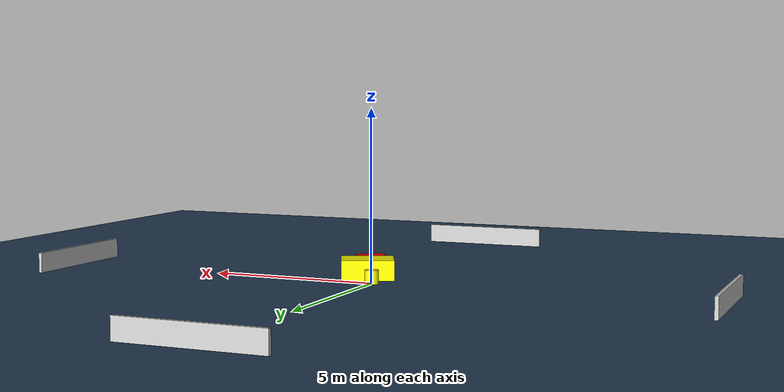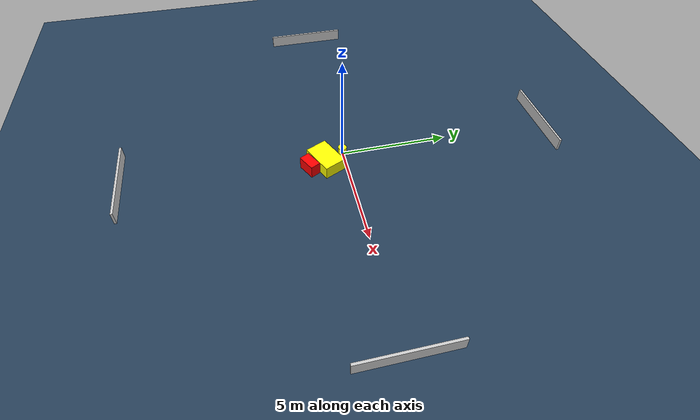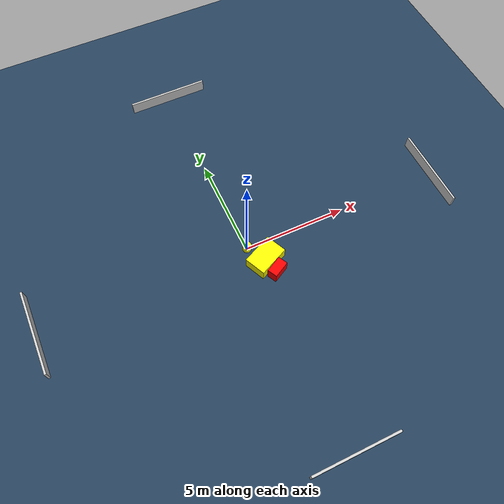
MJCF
<?xml version="1.0" ?>
<mujoco model="generated_environment">
  <option timestep="0.01" integrator="RK4" cone="elliptic"/>
  <default>
    <geom density="1"/>
  </default>
  <asset>
    <texture builtin="gradient" height="3072" name="skybox" rgb1="0.3 0.5 0.7" rgb2="0 0 0" type="skybox" width="512"/>
    <texture builtin="checker" height="300" name="groundplane" rgb1="0.2 0.3 0.4" rgb2="0.1 0.2 0.3" type="2d" width="300"/>
    <material name="groundplane" reflectance="0.2" texrepeat="5 5" texture="groundplane"/>
  </asset>
  <worldbody>
    <light dir="0 0 -1" directional="true" pos="0 0 1.5"/>
    <geom condim="3" friction="0.5 0.005 0.001" material="groundplane" name="floor" pos="0 0 0" size="0 0 0.05" type="plane"/>
    <body name="walls">
      <geom name="wall_1" condim="4" pos="-10.0 0.0 0.3" rgba="0.800000011920929 0.800000011920929 0.800000011920929 1.0" size="0.05 2.0 0.3" type="box"/>
      <geom name="wall_2" condim="4" pos="10.0 0.0 0.3" rgba="0.800000011920929 0.800000011920929 0.800000011920929 1.0" size="0.05 2.0 0.3" type="box"/>
      <geom name="wall_3" condim="4" pos="0.0 -10.0 0.3" rgba="0.800000011920929 0.800000011920929 0.800000011920929 1.0" size="2.0 0.05 0.3" type="box"/>
      <geom name="wall_4" condim="4" pos="0.0 10.0 0.3" rgba="0.800000011920929 0.800000011920929 0.800000011920929 1.0" size="2.0 0.05 0.3" type="box"/>
    </body>
    <body name="robot">
      <joint name="joint_x" type="slide" pos="0 0 0" axis="1 0 0"/>
      <joint name="joint_y" type="slide" pos="0 0 0" axis="0 1 0"/>
      <geom name="robot" type="cylinder" pos="0.0 0.0 0.2" size="0.2 0.2 0.0" mass="5.0" friction="1.0 0.005 0.0001" condim="4" rgba="1.0 1.0 0.0 1.0"/>
    </body>
    <body name="obstacle_1_movable">
      <geom name="obstacle_1_movable" condim="4" pos="0.5170024321209407 -0.8932126296660204 0.3" euler="0 0 24.696444808718976" friction="0.0 0.005 0.001" rgba="1.0 1.0 0.0 1.0" size="0.7724174889171802 0.5179058563272783 0.3" type="box" mass="0.1"/>
      <joint type="free"/>
    </body>
    <body name="obstacle_2_static">
      <geom name="obstacle_2_static" condim="4" pos="0.7431019295351683 -1.654945473388648 0.3" euler="0 0 117.93434591321454" friction="0.0 0.005 0.001" rgba="1.0 0.0 0.0 1.0" size="0.23881643822689022 0.4179852233829225 0.3" type="box"/>
    </body>
  </worldbody>
  <actuator>
    <motor name="actuator_x" joint="joint_x" gear="1" ctrlrange="-1 1"/>
    <motor name="actuator_y" joint="joint_y" gear="1" ctrlrange="-1 1"/>
  </actuator>
</mujoco>
